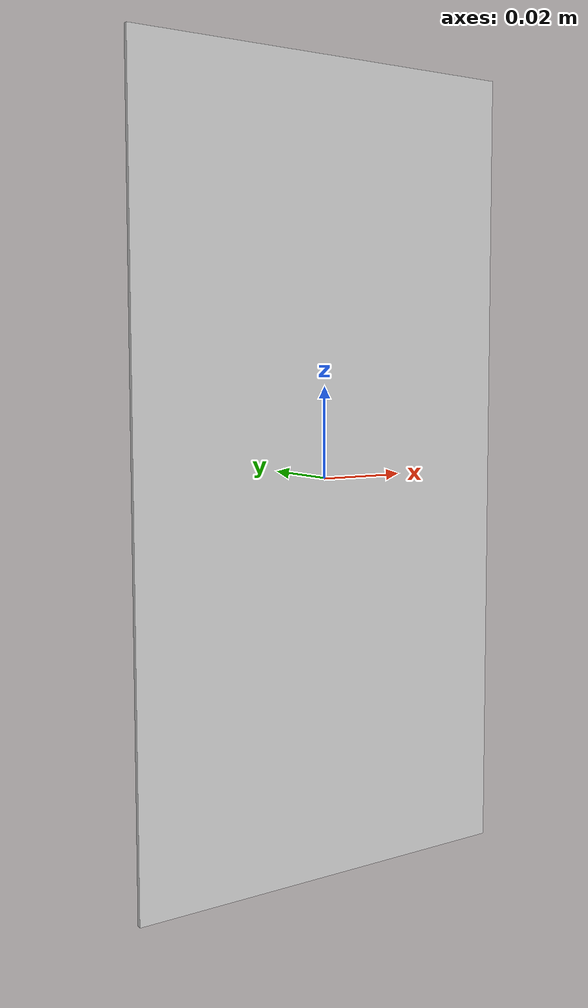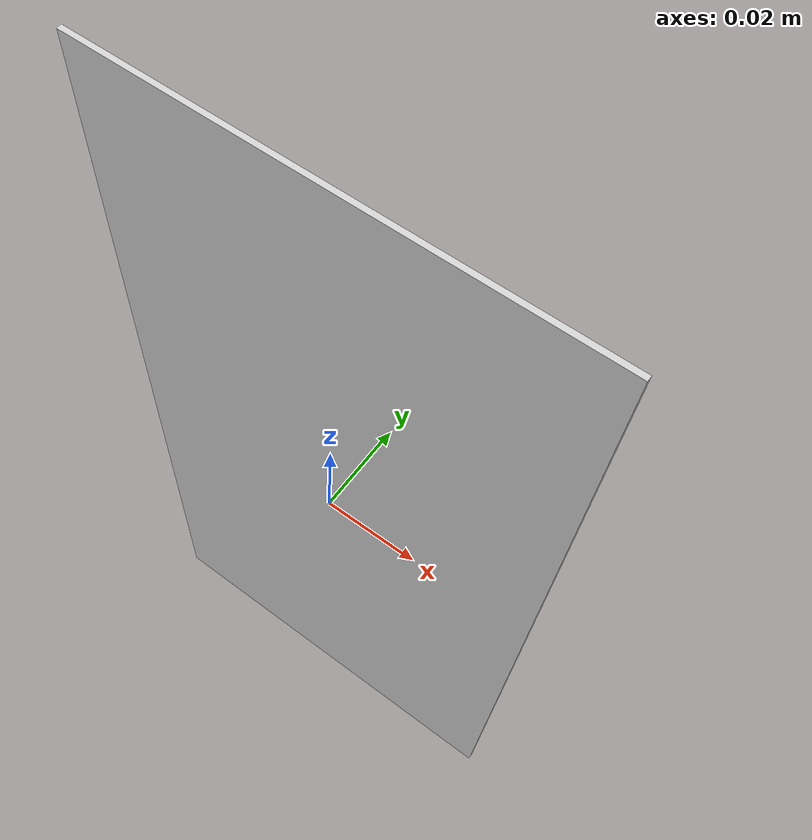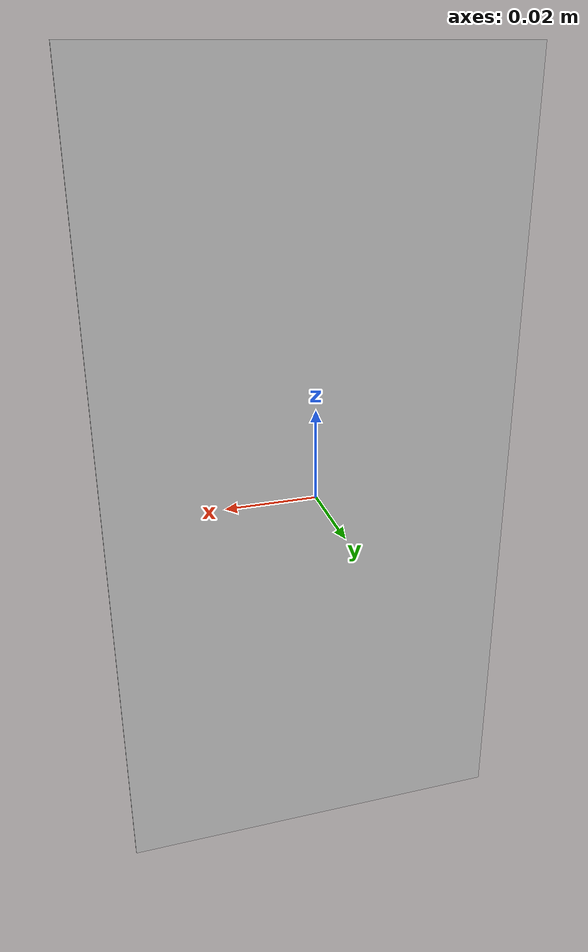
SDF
<?xml version='1.0'?>
<sdf version='1.6'>
  <model name='roscar_peaton.SLDPRT'>
    <link name='roscar_peaton'>
      <pose frame=''>0 0 0 0 -0 0</pose>
      <inertial>
        <pose frame=''>0 -0.0005 0 0 -0 0</pose>
        <mass>0.016542</mass>
        <inertia>
          <ixx>4.4665e-05</ixx>
          <ixy>-4.07713e-37</ixy>
          <ixz>6.6616e-21</ixz>
          <iyy>5.6306e-05</iyy>
          <iyz>-2.74932e-21</iyz>
          <izz>1.1644e-05</izz>
        </inertia>
      </inertial>
      <collision name='roscar_peaton_collision'>
        <pose frame=''>0 0 0 1.5708 -0 0</pose>
        <geometry>
          <mesh>
            <scale>1 1 1</scale>
            <uri>model://roscar_George/meshes/roscar_peaton.dae</uri>
          </mesh>
        </geometry>
      </collision>
      <visual name='roscar_peaton_visual'>
        <pose frame=''>0 0 0 1.5708 -0 0</pose>
        <geometry>
          <mesh>
            <scale>1 1 1</scale>
            <uri>model://roscar_George/meshes/roscar_peaton.dae</uri>
          </mesh>
        </geometry>

				<material>
					<script>
            <uri>model://roscar_George/materials/scripts</uri>
            <uri>model://roscar_George/materials/textures</uri>
						<name>George/Texture</name>
					</script>
				</material>

      </visual>
    </link>
  </model>
</sdf>
